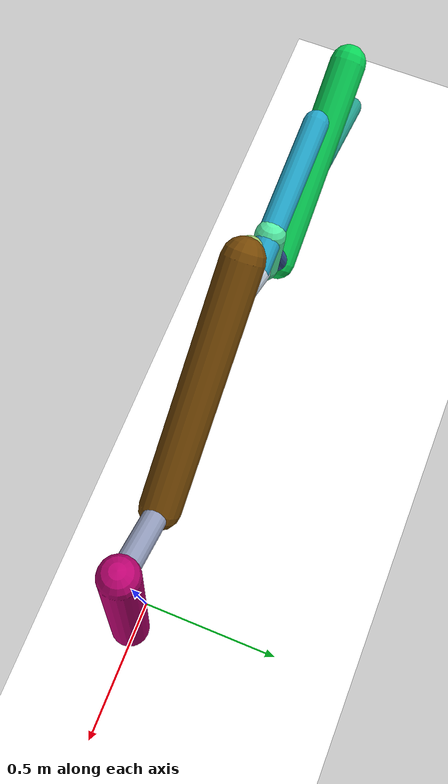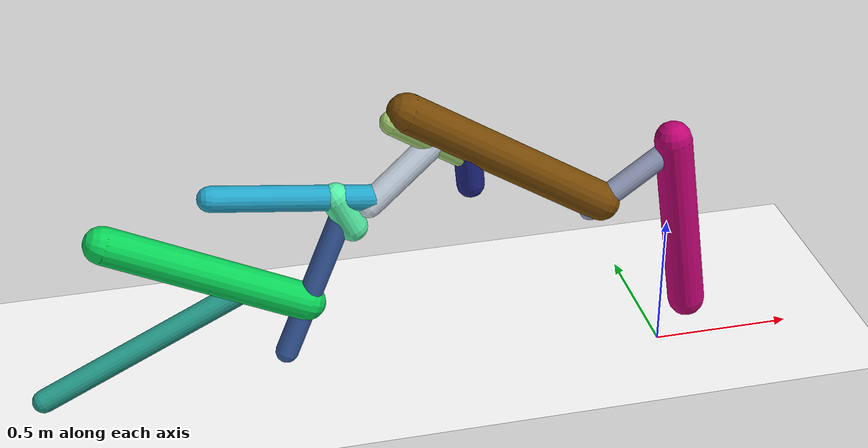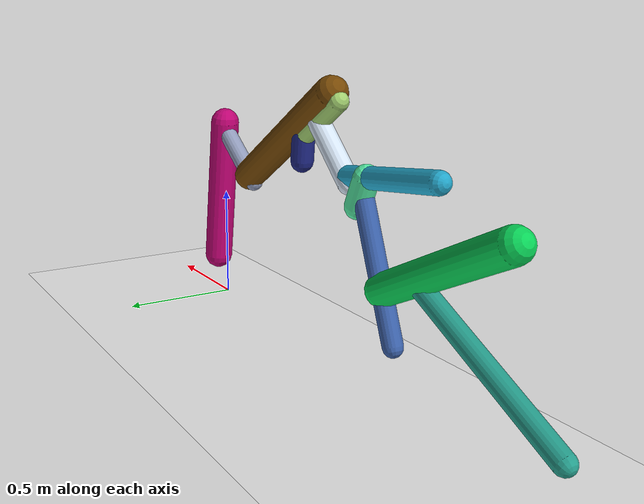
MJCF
<mujoco model="morphology">
  <option timestep="0.01"/>
  <default>
    <default class="/"/>
    <default class="0/"/>
    <default class="0/1/"/>
    <default class="0/1/2/"/>
    <default class="0/1/2/3/"/>
    <default class="0/1/2/3/4/"/>
    <default class="0/1/2/3/4/5/"/>
    <default class="0/1/2/3/4/5/6/"/>
    <default class="0/1/2/3/4/5/6/7/"/>
    <default class="0/1/2/3/4/5/6/7/8/"/>
    <default class="0/1/2/3/4/5/6/7/8/9/"/>
    <default class="0/1/2/3/4/5/6/7/8/9/10/"/>
  </default>
  <asset>
    <texture name="texplane" type="2d" builtin="checker" rgb1="0.10000000000000001 0.20000000000000001 0.29999999999999999" rgb2="0.20000000000000001 0.29999999999999999 0.40000000000000002" width="300" height="300"/>
    <material name="MatPlane" class="/" texture="texplane" texrepeat="20 20" specular="1" shininess="1" reflectance="0.5"/>
  </asset>
  <worldbody>
    <light name="//unnamed_light_0" class="/" directional="true" pos="0 0 1.5" dir="0 0 -1.3" cutoff="100" exponent="1" diffuse="1 1 1" specular="0.10000000000000001 0.10000000000000001 0.10000000000000001"/>
    <geom name="ground" class="/" type="plane" size="15 15 0.5" material="MatPlane" rgba="1 1 1 1"/>
    <site name="body" class="/" size="9.9999999999999995e-07 9.9999999999999995e-07 9.9999999999999995e-07" pos="0 0 0.83622679710388181"/>
    <body pos="0 0 0.83622679710388181" name="0/">
      <joint name="0/rootx/" class="/" type="slide" axis="1 0 0" limited="false" stiffness="0" armature="0" damping="0"/>
      <joint name="0/rootz/" class="/" type="slide" axis="0 0 1" limited="false" stiffness="0" armature="0" damping="0"/>
      <joint name="0/rooty/" class="/" type="hinge" axis="0 1 0" limited="false" stiffness="0" armature="0" damping="0"/>
      <geom name="0/geom" class="0/" type="capsule" contype="1" conaffinity="1" condim="3" size="0.065966111491291002" rgba="0.74938698299084394 0.0089067964443148018 0.45067120510551362 1" friction="0.59999999999999998 0.10000000000000001 0.10000000000000001" fromto="0 0 0 0.098523210788601268 0 -0.67134279819545495"/>
      <site name="0/end0" class="0/" size="0.0050000000000000001" pos="0.098523210788601268 0 -0.67134279819545495"/>
      <site name="0/attach1" class="0/" size="9.9999999999999995e-07 9.9999999999999995e-07 9.9999999999999995e-07" pos="0.0041337158298564297 0 -0.028167376295878239"/>
      <body pos="0.0041337158298564297 0 -0.028167376295878239" name="0/1/">
        <joint name="0/1/joint/" class="0/" type="hinge" axis="0 1 0" limited="true" range="-39.431742425278237 39.431742425278237"/>
        <geom name="0/1/geom" class="0/1/" type="capsule" contype="1" conaffinity="1" condim="3" size="0.040384933495278295" rgba="0.58162646120481531 0.62107725916094025 0.74451821173828681 1" friction="0.59999999999999998 0.10000000000000001 0.10000000000000001" fromto="0 0 0 -0.29206972600270908 0 -0.20991299877516811"/>
        <site name="0/1/end1" class="0/1/" size="0.0050000000000000001" pos="-0.29206972600270908 0 -0.20991299877516811"/>
        <site name="0/1/attach2" class="0/1/" size="9.9999999999999995e-07 9.9999999999999995e-07 9.9999999999999995e-07" pos="-0.2555723136976798 0 -0.18368199781065409"/>
        <body pos="-0.2555723136976798 0 -0.18368199781065409" name="0/1/2/">
          <joint name="0/1/2/joint/" class="0/1/" type="hinge" axis="0 1 0" limited="true" range="-37.48091462893457 37.48091462893457"/>
          <geom name="0/1/2/geom" class="0/1/2/" type="capsule" contype="1" conaffinity="1" condim="3" size="0.068265717852162039" rgba="0.46790369710184865 0.28513225788892427 0.020353105777315306 1" friction="0.59999999999999998 0.10000000000000001 0.10000000000000001" fromto="0 0 0 -0.6852593306263004 0 0.43312057791191738"/>
          <site name="0/1/2/end2" class="0/1/2/" size="0.0050000000000000001" pos="-0.6852593306263004 0 0.43312057791191738"/>
          <site name="0/1/2/attach3" class="0/1/2/" size="9.9999999999999995e-07 9.9999999999999995e-07 9.9999999999999995e-07" pos="-0.48314771014376512 0 0.30537521501973636"/>
          <body pos="-0.48314771014376512 0 0.30537521501973636" name="0/1/2/3/">
            <joint name="0/1/2/3/joint/" class="0/1/2/" type="hinge" axis="0 1 0" limited="true" range="-48.173068366999864 48.173068366999864"/>
            <geom name="0/1/2/3/geom" class="0/1/2/3/" type="capsule" contype="1" conaffinity="1" condim="3" size="0.048152398509444541" rgba="0.11747104077323889 0.1491402773530589 0.50286263989068092 1" friction="0.59999999999999998 0.10000000000000001 0.10000000000000001" fromto="0 0 0 0.016379837522661478 0 -0.16960818840972258"/>
            <site name="0/1/2/3/end3" class="0/1/2/3/" size="0.0050000000000000001" pos="0.016379837522661478 0 -0.16960818840972258"/>
            <site name="0/1/2/3/attach4" class="0/1/2/3/" size="9.9999999999999995e-07 9.9999999999999995e-07 9.9999999999999995e-07" pos="0.0065967582710242381 0 -0.068307406479296756"/>
            <body pos="0.0065967582710242381 0 -0.068307406479296756" name="0/1/2/3/4/">
              <joint name="0/1/2/3/4/joint/" class="0/1/2/3/" type="hinge" axis="0 1 0" limited="true" range="-49.426046479941931 49.426046479941931"/>
              <geom name="0/1/2/3/4/geom" class="0/1/2/3/4/" type="capsule" contype="1" conaffinity="1" condim="3" size="0.041751561426634817" rgba="0.63613191703115424 0.8121648495129854 0.43578147881542739 1" friction="0.59999999999999998 0.10000000000000001 0.10000000000000001" fromto="0 0 0 -0.25878768541531549 0 0.1669183320106542"/>
              <site name="0/1/2/3/4/end4" class="0/1/2/3/4/" size="0.0050000000000000001" pos="-0.25878768541531549 0 0.1669183320106542"/>
              <site name="0/1/2/3/4/attach5" class="0/1/2/3/4/" size="9.9999999999999995e-07 9.9999999999999995e-07 9.9999999999999995e-07" pos="-0.11618600141695756 0 0.074940094341746893"/>
              <body pos="-0.11618600141695756 0 0.074940094341746893" name="0/1/2/3/4/5/">
                <joint name="0/1/2/3/4/5/joint/" class="0/1/2/3/4/" type="hinge" axis="0 1 0" limited="true" range="-51.636054885358242 51.636054885358242"/>
                <geom name="0/1/2/3/4/5/geom" class="0/1/2/3/4/5/" type="capsule" contype="1" conaffinity="1" condim="3" size="0.045249439519180389" rgba="0.84242278891005684 0.90093967265736619 0.96423003479981895 1" friction="0.59999999999999998 0.10000000000000001 0.10000000000000001" fromto="0 0 0 -0.22356792394257741 0 -0.21038217120555869"/>
                <site name="0/1/2/3/4/5/end5" class="0/1/2/3/4/5/" size="0.0050000000000000001" pos="-0.22356792394257741 0 -0.21038217120555869"/>
                <site name="0/1/2/3/4/5/attach6" class="0/1/2/3/4/5/" size="9.9999999999999995e-07 9.9999999999999995e-07 9.9999999999999995e-07" pos="-0.19761235524118492 0 -0.18595742904229323"/>
                <body pos="-0.19761235524118492 0 -0.18595742904229323" name="0/1/2/3/4/5/6/">
                  <joint name="0/1/2/3/4/5/6/joint/" class="0/1/2/3/4/5/" type="hinge" axis="0 1 0" limited="true" range="-47.558908842157706 47.558908842157706"/>
                  <geom name="0/1/2/3/4/5/6/geom" class="0/1/2/3/4/5/6/" type="capsule" contype="1" conaffinity="1" condim="3" size="0.044125384083045713" rgba="0.1378544570801814 0.65389114579166052 0.7955702848930406 1" friction="0.59999999999999998 0.10000000000000001 0.10000000000000001" fromto="0 0 0 -0.55608303576372231 0 0.070928733799379806"/>
                  <site name="0/1/2/3/4/5/6/end6" class="0/1/2/3/4/5/6/" size="0.0050000000000000001" pos="-0.55608303576372231 0 0.070928733799379806"/>
                  <site name="0/1/2/3/4/5/6/attach7" class="0/1/2/3/4/5/6/" size="9.9999999999999995e-07 9.9999999999999995e-07 9.9999999999999995e-07" pos="-0.14002248173924445 0 0.017859953809904208"/>
                  <body pos="-0.14002248173924445 0 0.017859953809904208" name="0/1/2/3/4/5/6/7/">
                    <joint name="0/1/2/3/4/5/6/7/joint/" class="0/1/2/3/4/5/6/" type="hinge" axis="0 1 0" limited="true" range="-69.948872577406718 69.948872577406718"/>
                    <geom name="0/1/2/3/4/5/6/7/geom" class="0/1/2/3/4/5/6/7/" type="capsule" contype="1" conaffinity="1" condim="3" size="0.051814343722525885" rgba="0.33702252316024373 0.94023026217428274 0.65743646443438453 1" friction="0.59999999999999998 0.10000000000000001 0.10000000000000001" fromto="0 0 0 0.054941138148112412 0 -0.1191983072235735"/>
                    <site name="0/1/2/3/4/5/6/7/end7" class="0/1/2/3/4/5/6/7/" size="0.0050000000000000001" pos="0.054941138148112412 0 -0.1191983072235735"/>
                    <site name="0/1/2/3/4/5/6/7/attach8" class="0/1/2/3/4/5/6/7/" size="9.9999999999999995e-07 9.9999999999999995e-07 9.9999999999999995e-07" pos="0.025265199443291149 0 -0.054814463384205363"/>
                    <body pos="0.025265199443291149 0 -0.054814463384205363" name="0/1/2/3/4/5/6/7/8/">
                      <joint name="0/1/2/3/4/5/6/7/8/joint/" class="0/1/2/3/4/5/6/7/" type="hinge" axis="0 1 0" limited="true" range="-48.226275726377693 48.226275726377693"/>
                      <geom name="0/1/2/3/4/5/6/7/8/geom" class="0/1/2/3/4/5/6/7/8/" type="capsule" contype="1" conaffinity="1" condim="3" size="0.040541639236765271" rgba="0.22942906447036526 0.38093026565945753 0.66491425910398683 1" friction="0.59999999999999998 0.10000000000000001 0.10000000000000001" fromto="0 0 0 -0.21572402754745423 0 -0.54399147996715436"/>
                      <site name="0/1/2/3/4/5/6/7/8/end8" class="0/1/2/3/4/5/6/7/8/" size="0.0050000000000000001" pos="-0.21572402754745423 0 -0.54399147996715436"/>
                      <site name="0/1/2/3/4/5/6/7/8/attach9" class="0/1/2/3/4/5/6/7/8/" size="9.9999999999999995e-07 9.9999999999999995e-07 9.9999999999999995e-07" pos="-0.13743703088759124 0 -0.34657508801788806"/>
                      <body pos="-0.13743703088759124 0 -0.34657508801788806" name="0/1/2/3/4/5/6/7/8/9/">
                        <joint name="0/1/2/3/4/5/6/7/8/9/joint/" class="0/1/2/3/4/5/6/7/8/" type="hinge" axis="0 1 0" limited="true" range="-69.384429799681328 69.384429799681328"/>
                        <geom name="0/1/2/3/4/5/6/7/8/9/geom" class="0/1/2/3/4/5/6/7/8/9/" type="capsule" contype="1" conaffinity="1" condim="3" size="0.065209380473852566" rgba="0.033505199293556553 0.82836733025810794 0.34363914528790274 1" friction="0.59999999999999998 0.10000000000000001 0.10000000000000001" fromto="0 0 0 -0.66523209198796407 0 0.32848394610978526"/>
                        <site name="0/1/2/3/4/5/6/7/8/9/end9" class="0/1/2/3/4/5/6/7/8/9/" size="0.0050000000000000001" pos="-0.66523209198796407 0 0.32848394610978526"/>
                        <site name="0/1/2/3/4/5/6/7/8/9/attach10" class="0/1/2/3/4/5/6/7/8/9/" size="9.9999999999999995e-07 9.9999999999999995e-07 9.9999999999999995e-07" pos="-0.18843239272253814 0 0.093045745510317329"/>
                        <body pos="-0.18843239272253814 0 0.093045745510317329" name="0/1/2/3/4/5/6/7/8/9/10/">
                          <joint name="0/1/2/3/4/5/6/7/8/9/10/joint/" class="0/1/2/3/4/5/6/7/8/9/" type="hinge" axis="0 1 0" limited="true" range="-63.938367116595558 63.938367116595558"/>
                          <geom name="0/1/2/3/4/5/6/7/8/9/10/geom" class="0/1/2/3/4/5/6/7/8/9/10/" type="capsule" contype="1" conaffinity="1" condim="3" size="0.040751236585006317" rgba="0.14451526584453611 0.62103925846408092 0.55207468667464488 1" friction="0.59999999999999998 0.10000000000000001 0.10000000000000001" fromto="0 0 0 -0.73212245476568749 0 -0.35994406625374514"/>
                          <site name="0/1/2/3/4/5/6/7/8/9/10/end10" class="0/1/2/3/4/5/6/7/8/9/10/" size="0.0050000000000000001" pos="-0.73212245476568749 0 -0.35994406625374514"/>
                        </body>
                      </body>
                    </body>
                  </body>
                </body>
              </body>
            </body>
          </body>
        </body>
      </body>
      <camera name="0/side" class="0/" mode="trackcom" pos="0.40000000000000002 -4 0.20000000000000001" quat="0.70699999999999996 0.70699999999999996 0 0"/>
    </body>
  </worldbody>
  <actuator>
    <motor name="0/1/motor" class="0/1/" ctrllimited="true" ctrlrange="-1 1" gear="59" joint="0/1/joint/"/>
    <motor name="0/1/2/motor" class="0/1/2/" ctrllimited="true" ctrlrange="-1 1" gear="76" joint="0/1/2/joint/"/>
    <motor name="0/1/2/3/motor" class="0/1/2/3/" ctrllimited="true" ctrlrange="-1 1" gear="75" joint="0/1/2/3/joint/"/>
    <motor name="0/1/2/3/4/motor" class="0/1/2/3/4/" ctrllimited="true" ctrlrange="-1 1" gear="59" joint="0/1/2/3/4/joint/"/>
    <motor name="0/1/2/3/4/5/motor" class="0/1/2/3/4/5/" ctrllimited="true" ctrlrange="-1 1" gear="67" joint="0/1/2/3/4/5/joint/"/>
    <motor name="0/1/2/3/4/5/6/motor" class="0/1/2/3/4/5/6/" ctrllimited="true" ctrlrange="-1 1" gear="78" joint="0/1/2/3/4/5/6/joint/"/>
    <motor name="0/1/2/3/4/5/6/7/motor" class="0/1/2/3/4/5/6/7/" ctrllimited="true" ctrlrange="-1 1" gear="76" joint="0/1/2/3/4/5/6/7/joint/"/>
    <motor name="0/1/2/3/4/5/6/7/8/motor" class="0/1/2/3/4/5/6/7/8/" ctrllimited="true" ctrlrange="-1 1" gear="65" joint="0/1/2/3/4/5/6/7/8/joint/"/>
    <motor name="0/1/2/3/4/5/6/7/8/9/motor" class="0/1/2/3/4/5/6/7/8/9/" ctrllimited="true" ctrlrange="-1 1" gear="63" joint="0/1/2/3/4/5/6/7/8/9/joint/"/>
    <motor name="0/1/2/3/4/5/6/7/8/9/10/motor" class="0/1/2/3/4/5/6/7/8/9/10/" ctrllimited="true" ctrlrange="-1 1" gear="59" joint="0/1/2/3/4/5/6/7/8/9/10/joint/"/>
  </actuator>
  <sensor>
    <subtreelinvel name="velocity" body="0/"/>
  </sensor>
</mujoco>
